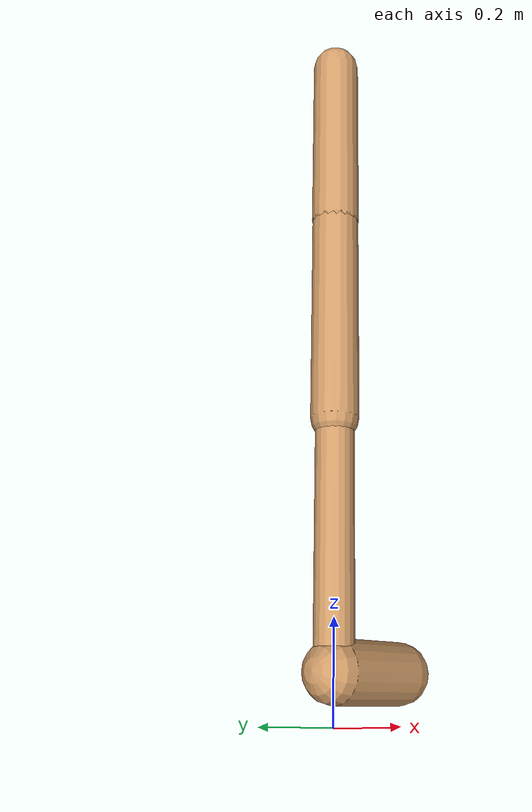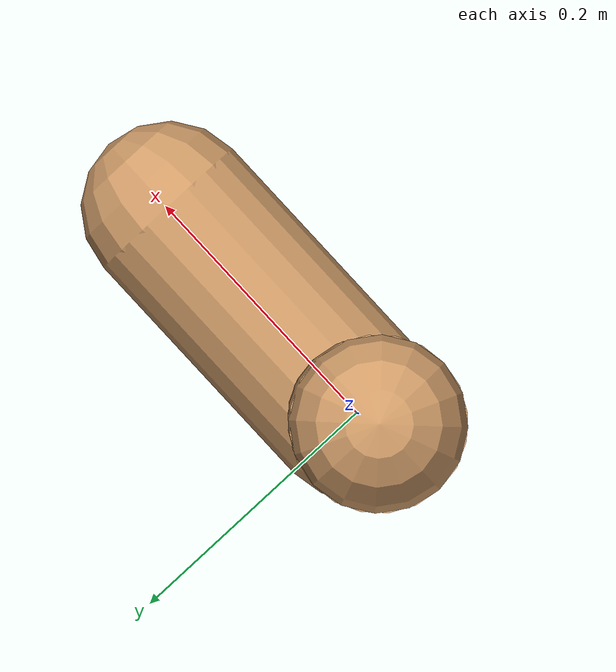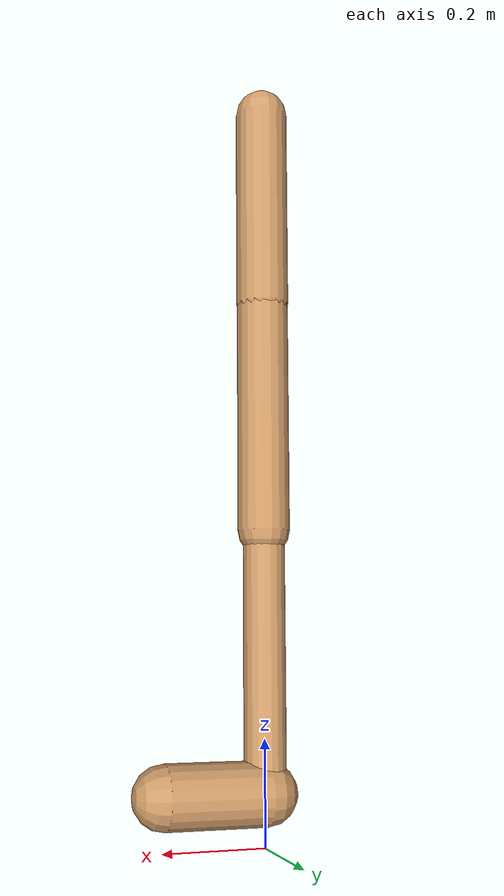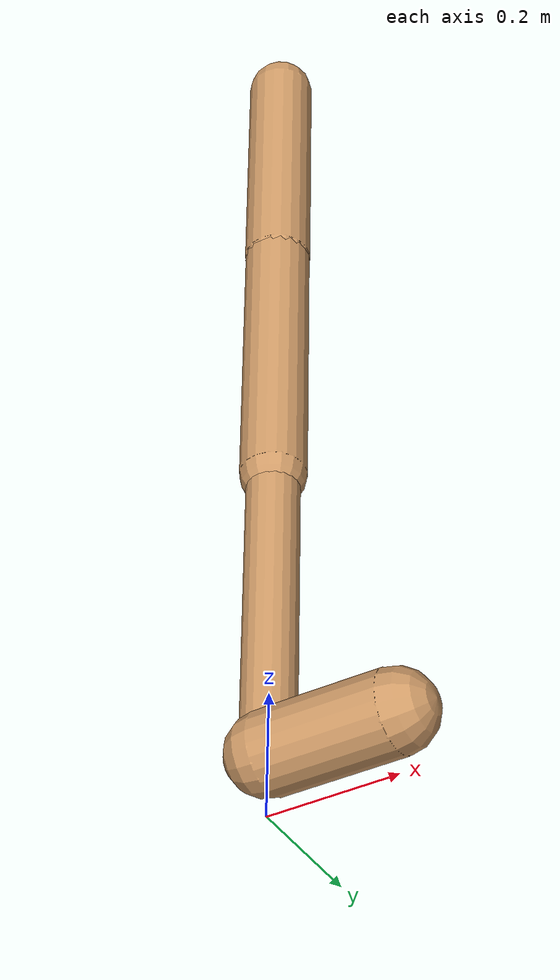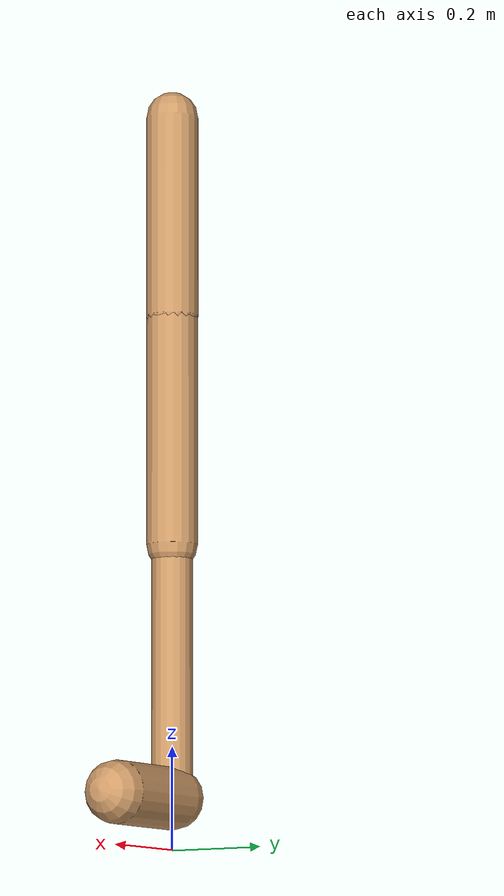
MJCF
<mujoco model="walker2d">
  <compiler angle="degree" coordinate="global" inertiafromgeom="true" />
  <default>
    <joint armature="0.01" damping=".1" limited="true" />
    <geom conaffinity="0" condim="3" contype="1" density="1000" friction="0.8 .1 .1" rgba="0.8 0.6 .4 1" />
  </default>
  <option integrator="RK4" timestep="0.002" />
  <worldbody>

    <body name="torso" pos="0 0 0.008988818586889177">
      <joint armature="0" axis="1 0 0" damping="0" limited="false" name="ignorex" pos="0 0 0" stiffness="0" type="slide" />
      <joint armature="0" axis="0 0 1" damping="0" limited="false" name="ignorez" pos="0 0 0" ref="1.25" stiffness="0" type="slide" />
      <joint armature="0" axis="0 1 0" damping="0" limited="false" name="ignorey" pos="0 0 0" stiffness="0" type="hinge" />
      <geom fromto="0 0 1.45 0 0 1.05" name="torso_geom" size="0.05157601170623874" type="capsule" />
      <body name="thigh">
        <joint axis="0 -1 0" name="thigh_joint" pos="0 0 1.05" range="-150 0" type="hinge" />
        <geom fromto="0.0 0.0 1.05 0.0 0.0 0.5957421385641051" name="thigh_geom" size="0.05049799942992936" type="capsule" />
        <body name="leg" pos="0.0 0.0 -0.004257861435894905">
          <joint axis="0 -1 0" name="leg_joint" pos="0 0 0.6" range="-150 0" type="hinge" />
          <geom fromto="0.0 0.0 0.6 0.0 0.0 0.0952690428490057" name="leg_geom" size="0.04039839954394348" type="capsule" />
          <body name="foot" pos="0.0 0.0 -0.004730957150994308">
            <joint axis="0 -1 0" name="foot_joint" pos="0 0 0.1" range="-45 45" type="hinge" />
            <geom fromto="0.0 0.0 0.1 0.19585461595433815 0.0 0.1" name="foot_geom" size="0.06138317320431863" type="capsule" />
          </body>
        </body>
      </body>

      <body name="thigh_left">
        <joint axis="0 -1 0" name="thigh_left_joint" pos="0 0 1.05" range="-150 0" type="hinge" />
        <geom fromto="0.0 0.0 1.05 0.0 0.0 0.5957421385641051" name="thigh_left_geom" rgba=".7 .3 .6 1" size="0.05049799942992936" type="capsule" />
        <body name="leg_left" pos="0.0 0.0 -0.004257861435894905">
          <joint axis="0 -1 0" name="leg_left_joint" pos="0 0 0.6" range="-150 0" type="hinge" />
          <geom fromto="0.0 0.0 0.6 0.0 0.0 0.0952690428490057" name="leg_left_geom" rgba=".7 .3 .6 1" size="0.04039839954394348" type="capsule" />
          <body name="foot_left" pos="0.0 0.0 -0.004730957150994308">
            <joint axis="0 -1 0" name="foot_left_joint" pos="0 0 0.1" range="-45 45" type="hinge" />
            <geom fromto="0.0 0.0 0.1 0.19585461595433815 0.0 0.1" name="foot_left_geom" rgba=".7 .3 .6 1" size="0.06138317320431863" type="capsule" />
          </body>
        </body>
      </body>
    </body>
  </worldbody>
  <actuator>

    <motor ctrllimited="true" ctrlrange="-1.0 1.0" gear="100" joint="thigh_joint" />
    <motor ctrllimited="true" ctrlrange="-1.0 1.0" gear="100" joint="leg_joint" />
    <motor ctrllimited="true" ctrlrange="-1.0 1.0" gear="100" joint="foot_joint" />
    <motor ctrllimited="true" ctrlrange="-1.0 1.0" gear="100" joint="thigh_left_joint" />
    <motor ctrllimited="true" ctrlrange="-1.0 1.0" gear="100" joint="leg_left_joint" />
    <motor ctrllimited="true" ctrlrange="-1.0 1.0" gear="100" joint="foot_left_joint" />

  </actuator>
</mujoco>
